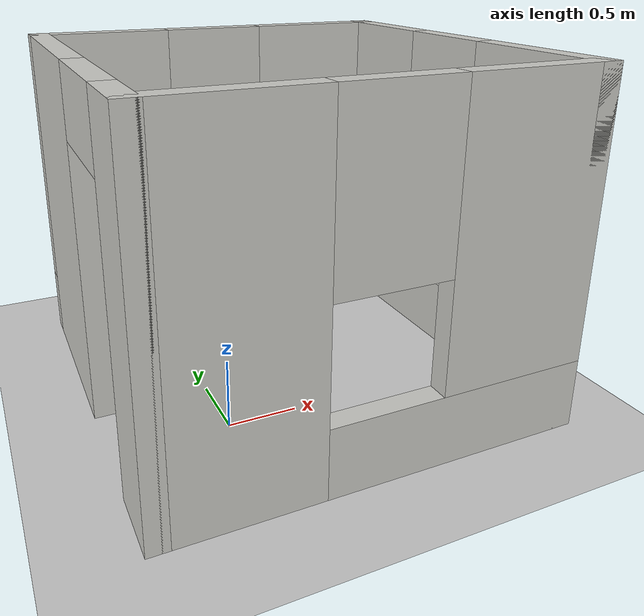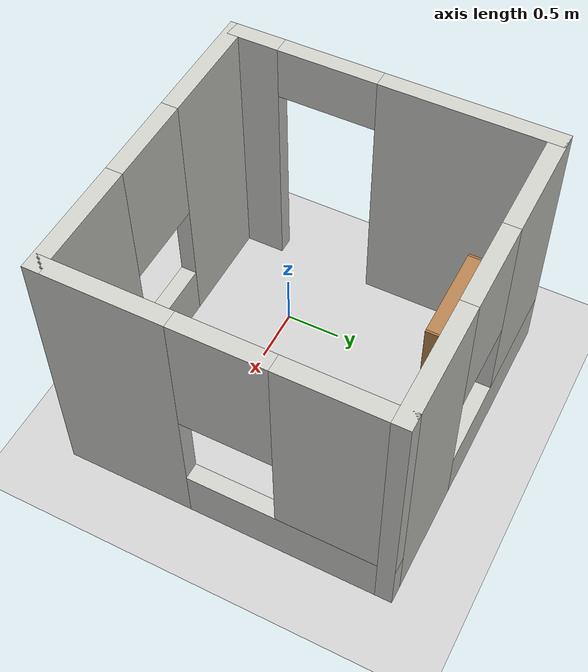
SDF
<sdf version="1.6">
 <world name="default">
  <light name="sun" type="directional">
   <pose>0 0 10 0 -0 0</pose>
   <diffuse>0.8 0.8 0.8 1</diffuse>
   <specular>0.2 0.2 0.2 1</specular>
   <attenuation>
    <range>1000</range>
    <constant>0.9</constant>
    <linear>0.01</linear>
    <quadratic>0.001</quadratic>
   </attenuation>
   <direction>-0.5 0.1 -0.9</direction>
  </light>
  <model name="ground_plane">
   <static>1</static>
   <link name="link">
    <collision name="collision">
     <geometry><plane><normal>0 0 1</normal><size>100 100</size></plane></geometry>
     <surface><friction><ode><mu>100</mu><mu2>50</mu2></ode></friction></surface>
    </collision>
    <visual name="visual">
     <cast_shadows>0</cast_shadows>
     <geometry><plane><normal>0 0 1</normal><size>100 100</size></plane></geometry>
     <material>
      <script><uri>file://media/materials/scripts/gazebo.material</uri><name>Gazebo/Grey</name></script>
     </material>
    </visual>
   </link>
  </model>
  <gravity>0 0 -9.8</gravity>
  <magnetic_field>6e-06 2.3e-05 -4.2e-05</magnetic_field>
  <atmosphere type="adiabatic"/>
  <physics name="default_physics" default="0" type="ode">
   <max_step_size>0.001</max_step_size>
   <real_time_factor>1</real_time_factor>
   <real_time_update_rate>1000</real_time_update_rate>
  </physics>
  <scene><ambient>0.4 0.4 0.4 1</ambient><background>0.7 0.7 0.7 1</background><shadows>1</shadows></scene>
  <spherical_coordinates>
   <surface_model>EARTH_WGS84</surface_model>
   <latitude_deg>0</latitude_deg>
   <longitude_deg>0</longitude_deg>
   <elevation>0</elevation>
   <heading_deg>0</heading_deg>
  </spherical_coordinates>
  <model name="Room">
   <pose>0.663817 0.548779 0 0 -0 0</pose>
   <link name="Wall_0">
    <pose>0 -1.425 0 0 -0 0</pose>
    <visual name="Wall_0_Visual_0">
     <pose>-0.9425 0 1.25 0 -0 0</pose>
     <geometry><box><size>1.115 0.15 2.5</size></box></geometry>
     <material>
      <script><uri>file://media/materials/scripts/gazebo.material</uri><name>Gazebo/CeilingTiled</name></script>
      <ambient>1 1 1 1</ambient>
     </material>
     <meta><layer>0</layer></meta>
    </visual>
    <collision name="Wall_0_Collision_0">
     <geometry><box><size>1.115 0.15 2.5</size></box></geometry>
     <pose>-0.9425 0 1.25 0 -0 0</pose>
    </collision>
    <visual name="Wall_0_Visual_1">
     <pose>0.5575 0 0.25 0 -0 0</pose>
     <geometry><box><size>1.885 0.15 0.5</size></box></geometry>
     <material>
      <script><uri>file://media/materials/scripts/gazebo.material</uri><name>Gazebo/CeilingTiled</name></script>
      <ambient>1 1 1 1</ambient>
     </material>
     <meta><layer>0</layer></meta>
    </visual>
    <collision name="Wall_0_Collision_1">
     <geometry><box><size>1.885 0.15 0.5</size></box></geometry>
     <pose>0.5575 0 0.25 0 -0 0</pose>
    </collision>
    <visual name="Wall_0_Visual_2">
     <pose>0.9575 0 1.5 0 -0 0</pose>
     <geometry><box><size>1.085 0.15 2</size></box></geometry>
     <material>
      <script><uri>file://media/materials/scripts/gazebo.material</uri><name>Gazebo/CeilingTiled</name></script>
      <ambient>1 1 1 1</ambient>
     </material>
     <meta><layer>0</layer></meta>
    </visual>
    <collision name="Wall_0_Collision_2">
     <geometry><box><size>1.085 0.15 2</size></box></geometry>
     <pose>0.9575 0 1.5 0 -0 0</pose>
    </collision>
    <visual name="Wall_0_Visual_3">
     <pose>0.015 0 1.9 0 -0 0</pose>
     <geometry><box><size>0.8 0.15 1.2</size></box></geometry>
     <material>
      <script><uri>file://media/materials/scripts/gazebo.material</uri><name>Gazebo/CeilingTiled</name></script>
      <ambient>1 1 1 1</ambient>
     </material>
     <meta><layer>0</layer></meta>
    </visual>
    <collision name="Wall_0_Collision_3">
     <geometry><box><size>0.8 0.15 1.2</size></box></geometry>
     <pose>0.015 0 1.9 0 -0 0</pose>
    </collision>
   </link>
   <link name="Wall_1">
    <pose>1.425 0 0 0 -0 1.5708</pose>
    <visual name="Wall_1_Visual_0">
     <pose>-0.9175 0 1.25 0 -0 0</pose>
     <geometry><box><size>1.165 0.15 2.5</size></box></geometry>
     <material>
      <script><uri>file://media/materials/scripts/gazebo.material</uri><name>Gazebo/CeilingTiled</name></script>
      <ambient>1 1 1 1</ambient>
     </material>
     <meta><layer>0</layer></meta>
    </visual>
    <collision name="Wall_1_Collision_0">
     <geometry><box><size>1.165 0.15 2.5</size></box></geometry>
     <pose>-0.9175 0 1.25 0 -0 0</pose>
    </collision>
    <visual name="Wall_1_Visual_1">
     <pose>0.5825 0 0.25 0 -0 0</pose>
     <geometry><box><size>1.835 0.15 0.5</size></box></geometry>
     <material>
      <script><uri>file://media/materials/scripts/gazebo.material</uri><name>Gazebo/CeilingTiled</name></script>
      <ambient>1 1 1 1</ambient>
     </material>
     <meta><layer>0</layer></meta>
    </visual>
    <collision name="Wall_1_Collision_1">
     <geometry><box><size>1.835 0.15 0.5</size></box></geometry>
     <pose>0.5825 0 0.25 0 -0 0</pose>
    </collision>
    <visual name="Wall_1_Visual_2">
     <pose>0.9825 0 1.5 0 -0 0</pose>
     <geometry><box><size>1.035 0.15 2</size></box></geometry>
     <material>
      <script><uri>file://media/materials/scripts/gazebo.material</uri><name>Gazebo/CeilingTiled</name></script>
      <ambient>1 1 1 1</ambient>
     </material>
     <meta><layer>0</layer></meta>
    </visual>
    <collision name="Wall_1_Collision_2">
     <geometry><box><size>1.035 0.15 2</size></box></geometry>
     <pose>0.9825 0 1.5 0 -0 0</pose>
    </collision>
    <visual name="Wall_1_Visual_3">
     <pose>0.065 0 1.9 0 -0 0</pose>
     <geometry><box><size>0.8 0.15 1.2</size></box></geometry>
     <material>
      <script><uri>file://media/materials/scripts/gazebo.material</uri><name>Gazebo/CeilingTiled</name></script>
      <ambient>1 1 1 1</ambient>
     </material>
     <meta><layer>0</layer></meta>
    </visual>
    <collision name="Wall_1_Collision_3">
     <geometry><box><size>0.8 0.15 1.2</size></box></geometry>
     <pose>0.065 0 1.9 0 -0 0</pose>
    </collision>
   </link>
   <link name="Wall_2">
    <pose>0 1.425 0 0 -0 3.14159</pose>
    <visual name="Wall_2_Visual_0">
     <pose>-0.9375 0 1.25 0 -0 0</pose>
     <geometry><box><size>1.125 0.15 2.5</size></box></geometry>
     <material>
      <script><uri>file://media/materials/scripts/gazebo.material</uri><name>Gazebo/CeilingTiled</name></script>
      <ambient>1 1 1 1</ambient>
     </material>
     <meta><layer>0</layer></meta>
    </visual>
    <collision name="Wall_2_Collision_0">
     <geometry><box><size>1.125 0.15 2.5</size></box></geometry>
     <pose>-0.9375 0 1.25 0 -0 0</pose>
    </collision>
    <visual name="Wall_2_Visual_1">
     <pose>0.5625 0 0.25 0 -0 0</pose>
     <geometry><box><size>1.875 0.15 0.5</size></box></geometry>
     <material>
      <script><uri>file://media/materials/scripts/gazebo.material</uri><name>Gazebo/CeilingTiled</name></script>
      <ambient>1 1 1 1</ambient>
     </material>
     <meta><layer>0</layer></meta>
    </visual>
    <collision name="Wall_2_Collision_1">
     <geometry><box><size>1.875 0.15 0.5</size></box></geometry>
     <pose>0.5625 0 0.25 0 -0 0</pose>
    </collision>
    <visual name="Wall_2_Visual_2">
     <pose>0.9625 0 1.5 0 -0 0</pose>
     <geometry><box><size>1.075 0.15 2</size></box></geometry>
     <material>
      <script><uri>file://media/materials/scripts/gazebo.material</uri><name>Gazebo/CeilingTiled</name></script>
      <ambient>1 1 1 1</ambient>
     </material>
     <meta><layer>0</layer></meta>
    </visual>
    <collision name="Wall_2_Collision_2">
     <geometry><box><size>1.075 0.15 2</size></box></geometry>
     <pose>0.9625 0 1.5 0 -0 0</pose>
    </collision>
    <visual name="Wall_2_Visual_3">
     <pose>0.025 0 1.9 0 -0 0</pose>
     <geometry><box><size>0.8 0.15 1.2</size></box></geometry>
     <material>
      <script><uri>file://media/materials/scripts/gazebo.material</uri><name>Gazebo/CeilingTiled</name></script>
      <ambient>1 1 1 1</ambient>
     </material>
     <meta><layer>0</layer></meta>
    </visual>
    <collision name="Wall_2_Collision_3">
     <geometry><box><size>0.8 0.15 1.2</size></box></geometry>
     <pose>0.025 0 1.9 0 -0 0</pose>
    </collision>
   </link>
   <link name="Wall_3">
    <pose>-1.425 0 0 0 0 -1.5708</pose>
    <visual name="Wall_3_Visual_0">
     <pose>-0.7075 0 1.25 0 -0 0</pose>
     <geometry><box><size>1.585 0.15 2.5</size></box></geometry>
     <material>
      <script><uri>file://media/materials/scripts/gazebo.material</uri><name>Gazebo/CeilingTiled</name></script>
      <ambient>1 1 1 1</ambient>
     </material>
     <meta><layer>0</layer></meta>
    </visual>
    <collision name="Wall_3_Collision_0">
     <geometry><box><size>1.585 0.15 2.5</size></box></geometry>
     <pose>-0.7075 0 1.25 0 -0 0</pose>
    </collision>
    <visual name="Wall_3_Visual_1">
     <pose>1.2425 0 1.25 0 -0 0</pose>
     <geometry><box><size>0.515 0.15 2.5</size></box></geometry>
     <material>
      <script><uri>file://media/materials/scripts/gazebo.material</uri><name>Gazebo/CeilingTiled</name></script>
      <ambient>1 1 1 1</ambient>
     </material>
     <meta><layer>0</layer></meta>
    </visual>
    <collision name="Wall_3_Collision_1">
     <geometry><box><size>0.515 0.15 2.5</size></box></geometry>
     <pose>1.2425 0 1.25 0 -0 0</pose>
    </collision>
    <visual name="Wall_3_Visual_2">
     <pose>0.535 0 2.25 0 -0 0</pose>
     <geometry><box><size>0.9 0.15 0.5</size></box></geometry>
     <material>
      <script><uri>file://media/materials/scripts/gazebo.material</uri><name>Gazebo/CeilingTiled</name></script>
      <ambient>1 1 1 1</ambient>
     </material>
     <meta><layer>0</layer></meta>
    </visual>
    <collision name="Wall_3_Collision_2">
     <geometry><box><size>0.9 0.15 0.5</size></box></geometry>
     <pose>0.535 0 2.25 0 -0 0</pose>
    </collision>
   </link>
   <static>1</static>
  </model>
  <model name="bookshelf">
   <static>1</static>
   <link name="link">
    <inertial><mass>1</mass></inertial>
    <collision name="back">
     <pose>0 0.005 0.6 0 -0 0</pose>
     <geometry><box><size>0.9 0.01 1.2</size></box></geometry>
    </collision>
    <visual name="visual1">
     <pose>0 0.005 0.6 0 -0 0</pose>
     <geometry><box><size>0.9 0.01 1.2</size></box></geometry>
     <material>
      <script><uri>file://media/materials/scripts/gazebo.material</uri><name>Gazebo/Wood</name></script>
     </material>
    </visual>
    <collision name="left_side">
     <pose>0.45 -0.195 0.6 0 -0 0</pose>
     <geometry><box><size>0.02 0.4 1.2</size></box></geometry>
    </collision>
    <visual name="visual2">
     <pose>0.45 -0.195 0.6 0 -0 0</pose>
     <geometry><box><size>0.02 0.4 1.2</size></box></geometry>
     <material>
      <script><uri>file://media/materials/scripts/gazebo.material</uri><name>Gazebo/Wood</name></script>
     </material>
    </visual>
    <collision name="right_side">
     <pose>-0.45 -0.195 0.6 0 -0 0</pose>
     <geometry><box><size>0.02 0.4 1.2</size></box></geometry>
    </collision>
    <visual name="visual3">
     <pose>-0.45 -0.195 0.6 0 -0 0</pose>
     <geometry><box><size>0.02 0.4 1.2</size></box></geometry>
     <material>
      <script><uri>file://media/materials/scripts/gazebo.material</uri><name>Gazebo/Wood</name></script>
     </material>
    </visual>
    <collision name="bottom">
     <pose>0 -0.195 0.03 0 -0 0</pose>
     <geometry><box><size>0.88 0.4 0.06</size></box></geometry>
    </collision>
    <visual name="visual4">
     <pose>0 -0.195 0.03 0 -0 0</pose>
     <geometry><box><size>0.88 0.4 0.06</size></box></geometry>
     <material>
      <script><uri>file://media/materials/scripts/gazebo.material</uri><name>Gazebo/Wood</name></script>
     </material>
    </visual>
    <collision name="top">
     <pose>0 -0.195 1.19 0 -0 0</pose>
     <geometry><box><size>0.88 0.4 0.02</size></box></geometry>
    </collision>
    <visual name="visual5">
     <pose>0 -0.195 1.19 0 -0 0</pose>
     <geometry><box><size>0.88 0.4 0.02</size></box></geometry>
     <material>
      <script><uri>file://media/materials/scripts/gazebo.material</uri><name>Gazebo/Wood</name></script>
     </material>
    </visual>
    <collision name="low_shelf">
     <pose>0 -0.195 0.43 0 -0 0</pose>
     <geometry><box><size>0.88 0.4 0.02</size></box></geometry>
    </collision>
    <visual name="visual6">
     <pose>0 -0.195 0.43 0 -0 0</pose>
     <geometry><box><size>0.88 0.4 0.02</size></box></geometry>
     <material>
      <script><uri>file://media/materials/scripts/gazebo.material</uri><name>Gazebo/Wood</name></script>
     </material>
    </visual>
    <collision name="high_shelf">
     <pose>0 -0.195 0.8 0 -0 0</pose>
     <geometry><box><size>0.88 0.4 0.02</size></box></geometry>
    </collision>
    <visual name="visual7">
     <pose>0 -0.195 0.8 0 -0 0</pose>
     <geometry><box><size>0.88 0.4 0.02</size></box></geometry>
     <material>
      <script><uri>file://media/materials/scripts/gazebo.material</uri><name>Gazebo/Wood</name></script>
     </material>
    </visual>
   </link>
   <pose>-0.00974 1.87971 0 0 -0 0</pose>
  </model>
 </world>
</sdf>
